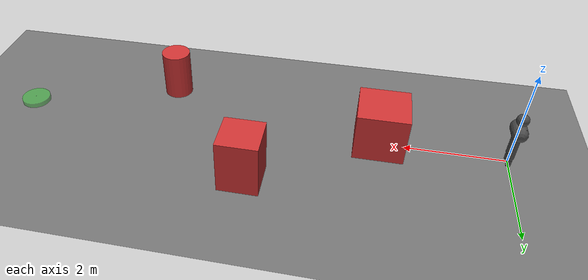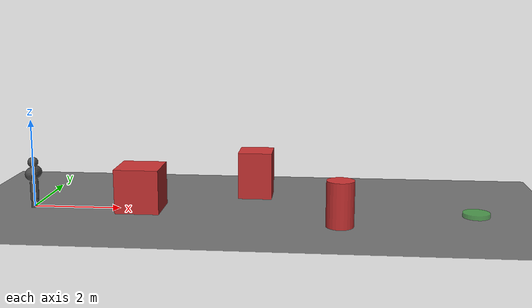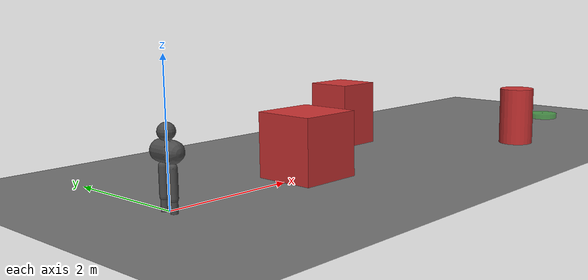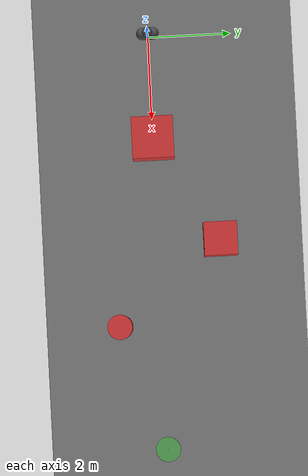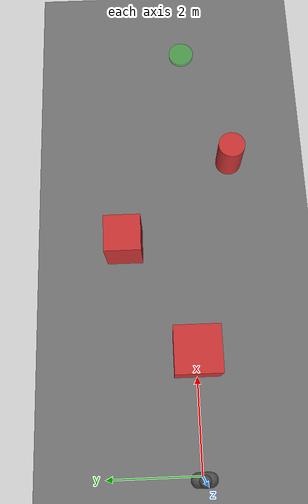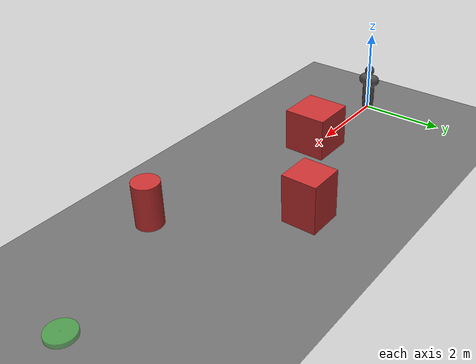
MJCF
<mujoco model="atlas_obstacle_navigation">
  <compiler angle="radian" autolimits="true"/>
  <option timestep="0.001" gravity="0 0 -9.81" integrator="implicitfast"/>
  <default><joint armature="0.01" damping="0.1"/><geom condim="4" friction="1.0 0.005 0.0001"/></default>
  <asset>
    <texture name="grid" type="2d" builtin="checker" rgb1="0.4 0.4 0.4" rgb2="0.5 0.5 0.5" width="512" height="512"/>
    <material name="grid_mat" texture="grid" texrepeat="10 10" reflectance="0.1"/>
    <material name="obstacle_mat" rgba="0.8 0.2 0.2 1"/>
    <material name="goal_mat" rgba="0.2 0.8 0.2 0.5"/>
    <material name="robot_mat" rgba="0.3 0.3 0.3 1"/>
  </asset>
  <worldbody>
    <geom name="ground" type="plane" size="20 20 0.1" material="grid_mat"/>
    <light name="top" pos="0 0 10" dir="0 0 -1" diffuse="0.8 0.8 0.8"/>
    <body name="torso" pos="0 0 0.78">
      <inertial mass="35.0" pos="0 0 0" diaginertia="1.0 1.0 1.0"/>
      <geom name="torso_geom" type="capsule" size="0.15" fromto="0 -0.12 0 0 0.12 0" material="robot_mat"/>
      <body name="head" pos="0 0 0.25"><inertial mass="2.0" pos="0 0 0" diaginertia="0.1 0.1 0.1"/><geom name="head_geom" type="sphere" size="0.12" material="robot_mat"/></body>
      <body name="left_thigh" pos="0 0.1 -0.2"><inertial mass="5.0" pos="0 0 -0.2" diaginertia="0.1 0.1 0.1"/><joint name="left_hip" type="hinge" axis="1 0 0" range="-1.5 1.5"/><geom name="lt_g" type="capsule" size="0.06" fromto="0 0 0 0 0 -0.4" material="robot_mat"/><body name="left_shin" pos="0 0 -0.4"><inertial mass="4.0" pos="0 0 -0.2" diaginertia="0.08 0.08 0.08"/><joint name="left_knee" type="hinge" axis="0 1 0" range="-2.5 0"/><geom name="ls_g" type="capsule" size="0.05" fromto="0 0 0 0 0 -0.4" material="robot_mat"/><body name="left_foot" pos="0 0 -0.4"><inertial mass="1.0" pos="0 0 -0.03" diaginertia="0.01 0.01 0.01"/><geom name="lf_g" type="box" size="0.08 0.04 0.03" pos="0 0 -0.03" material="robot_mat"/></body></body></body>
      <body name="right_thigh" pos="0 -0.1 -0.2"><inertial mass="5.0" pos="0 0 -0.2" diaginertia="0.1 0.1 0.1"/><joint name="right_hip" type="hinge" axis="1 0 0" range="-1.5 1.5"/><geom name="rt_g" type="capsule" size="0.06" fromto="0 0 0 0 0 -0.4" material="robot_mat"/><body name="right_shin" pos="0 0 -0.4"><inertial mass="4.0" pos="0 0 -0.2" diaginertia="0.08 0.08 0.08"/><joint name="right_knee" type="hinge" axis="0 1 0" range="-2.5 0"/><geom name="rs_g" type="capsule" size="0.05" fromto="0 0 0 0 0 -0.4" material="robot_mat"/><body name="right_foot" pos="0 0 -0.4"><inertial mass="1.0" pos="0 0 -0.03" diaginertia="0.01 0.01 0.01"/><geom name="rf_g" type="box" size="0.08 0.04 0.03" pos="0 0 -0.03" material="robot_mat"/></body></body></body>
      <freejoint name="root"/>
    </body>
    <body name="obstacle_1" pos="2.5 0 0.5"><geom name="obs1" type="box" size="0.5 0.5 0.5" material="obstacle_mat" contype="1" conaffinity="1"/></body>
    <body name="obstacle_2" pos="5.0 1.5 0.5"><geom name="obs2" type="box" size="0.4 0.4 0.6" material="obstacle_mat" contype="1" conaffinity="1"/></body>
    <body name="obstacle_3" pos="7.0 -1.0 0.5"><geom name="obs3" type="cylinder" size="0.3 0.5" material="obstacle_mat" contype="1" conaffinity="1"/></body>
    <body name="goal" pos="10.0 0 0.05"><geom name="goal_geom" type="cylinder" size="0.3 0.05" material="goal_mat" contype="0" conaffinity="0"/><site name="goal_site" pos="0 0 0.05"/></body>
  </worldbody>
  <sensor>
    <framepos name="torso_pos" objtype="body" objname="torso"/>
  </sensor>
</mujoco>
